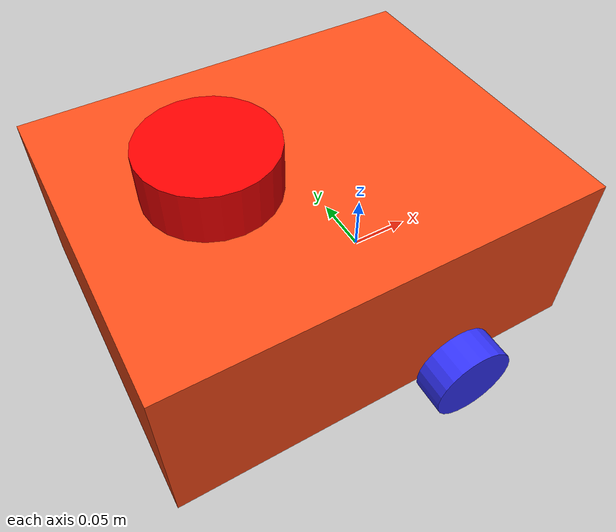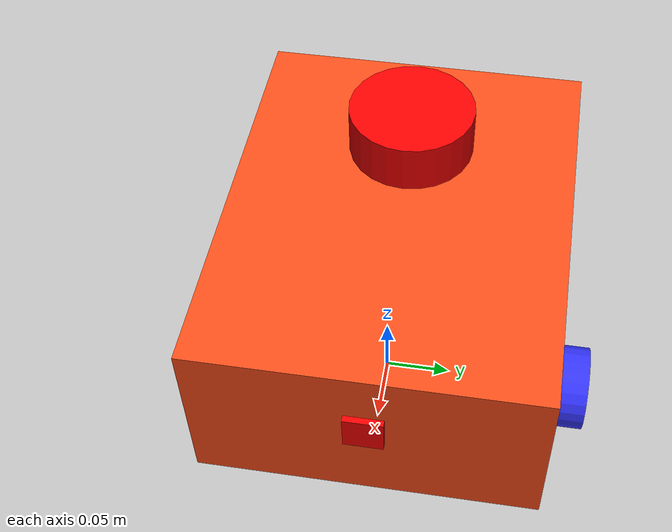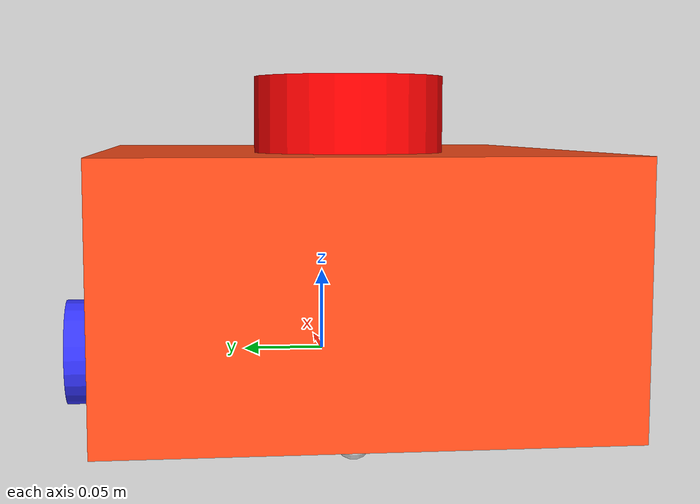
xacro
<?xml version="1.0"?>
<robot xmlns:xacro="http://www.ros.org/wiki/xacro" name="robot">

    <xacro:arg name="use_ros2_control" default="true"/>

    <xacro:include filename="robot_core.xacro" />

    <xacro:if value="$(arg use_ros2_control)">
        <xacro:include filename="ros2_control.xacro" />
    </xacro:if>
    <xacro:unless value="$(arg use_ros2_control)">
        <xacro:include filename="gazebo_control.xacro" />
    </xacro:unless>
    <xacro:include filename="lidar.xacro" />
    <xacro:include filename="camera.xacro" />

</robot>

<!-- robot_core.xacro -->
<robot xmlns:xacro="http://www.ros.org/wiki/xacro">

    <xacro:include filename="inertial_macros.xacro"/>

    <xacro:property name="chassis_length" value="0.335"/>
    <xacro:property name="chassis_width" value="0.265"/>
    <xacro:property name="chassis_height" value="0.138"/>
    <xacro:property name="chassis_mass" value="1.0"/>
    <xacro:property name="wheel_radius" value="0.033"/>
    <xacro:property name="wheel_thickness" value="0.026"/>
    <xacro:property name="wheel_mass" value="0.05"/>
    <xacro:property name="wheel_offset_x" value="0.226"/>
    <xacro:property name="wheel_offset_y" value="0.1485"/>
    <xacro:property name="wheel_offset_z" value="0.01"/>
    <xacro:property name="caster_wheel_radius" value="0.01"/>
    <xacro:property name="caster_wheel_mass" value="0.01"/>
    <xacro:property name="caster_wheel_offset_x" value="0.075"/>
    <xacro:property name="caster_wheel_offset_z" value="${wheel_offset_z - wheel_radius + caster_wheel_radius}"/>

    <material name="white">
        <color rgba="1 1 1 1" />
    </material>

    <material name="orange">
        <color rgba="1 0.3 0.1 1"/>
    </material>

    <material name="blue">
        <color rgba="0.2 0.2 1 1"/>
    </material>

    <material name="black">
        <color rgba="0 0 0 1"/>
    </material>

    <material name="red">
        <color rgba="1 0 0 1"/>
    </material>

    <!-- BASE LINK -->

    <link name="base_link">

    </link>

    <!-- BASE_FOOTPRINT LINK -->

    <joint name="base_footprint_joint" type="fixed">
        <parent link="base_link"/>
        <child link="base_footprint"/>
        <origin xyz="0 0 0" rpy="0 0 0"/>
    </joint>

    <link name="base_footprint">
    </link>

    <!-- CHASSIS LINK -->

    <joint name="chassis_joint" type="fixed">
        <parent link="base_link"/>
        <child link="chassis"/>
        <origin xyz="${-wheel_offset_x} 0 ${-wheel_offset_z}"/>
    </joint>

    <link name="chassis">
        <visual>
            <origin xyz="${chassis_length/2} 0 ${chassis_height/2}"/>
            <geometry>
                <box size="${chassis_length} ${chassis_width} ${chassis_height}"/>
            </geometry>
            <material name="orange"/>
        </visual>
        <collision>
            <origin xyz="${chassis_length/2} 0 ${chassis_height/2}"/>
            <geometry>
                <box size="${chassis_length} ${chassis_width} ${chassis_height}"/>
            </geometry>
        </collision>
        <xacro:inertial_box mass="0.5" x="${chassis_length}" y="${chassis_width}" z="${chassis_height}">
            <origin xyz="${chassis_length/2} 0 ${chassis_height/2}" rpy="0 0 0"/>
        </xacro:inertial_box>
    </link>

    <gazebo reference="chassis">
        <material>Gazebo/White</material>
    </gazebo>

    <!-- LEFT WHEEL LINK -->

    <joint name="left_wheel_joint" type="continuous">
        <parent link="base_link"/>
        <child link="left_wheel"/>
        <origin xyz="0 ${wheel_offset_y} 0" rpy="-${pi/2} 0 0" />
        <axis xyz="0 0 1"/>
    </joint>

    <link name="left_wheel">
        <visual>
            <geometry>
                <cylinder radius="${wheel_radius}" length="${wheel_thickness}"/>
            </geometry>
            <material name="blue"/>
        </visual>
        <collision>
            <geometry>
                <sphere radius="${wheel_radius}"/>
            </geometry>
        </collision>
        <xacro:inertial_cylinder mass="${wheel_mass}" length="${wheel_thickness}" radius="${wheel_radius}">
            <origin xyz="0 0 0" rpy="0 0 0"/>
        </xacro:inertial_cylinder>
    </link>

    <gazebo reference="left_wheel">
        <material>Gazebo/Black</material>
    </gazebo>

    <!-- RIGHT WHEEL LINK -->

    <joint name="right_wheel_joint" type="continuous">
        <parent link="base_link"/>
        <child link="right_wheel"/>
        <origin xyz="0 ${-wheel_offset_y} 0" rpy="${pi/2} 0 0" />
        <axis xyz="0 0 -1"/>
    </joint>

    <link name="right_wheel">
        <visual>
            <geometry>
                <cylinder radius="${wheel_radius}" length="${wheel_thickness}"/>
            </geometry>
            <material name="blue"/>
        </visual>
        <collision>
            <geometry>
                <sphere radius="${wheel_radius}"/>
            </geometry>
        </collision>
        <xacro:inertial_cylinder mass="${wheel_mass}" length="${wheel_thickness}" radius="${wheel_radius}">
            <origin xyz="0 0 0" rpy="0 0 0"/>
        </xacro:inertial_cylinder>
    </link>

    <gazebo reference="right_wheel">
        <material>Gazebo/Red</material>
    </gazebo>

    <!-- CASTER WHEEL LINK -->

    <joint name="caster_wheel_joint" type="fixed">
        <parent link="chassis"/>
        <child link="caster_wheel"/>
        <origin xyz="${caster_wheel_offset_x} 0 ${caster_wheel_offset_z}"/>
    </joint>

    <link name="caster_wheel">
        <visual>
            <geometry>
                <sphere radius="${caster_wheel_radius}"/>
            </geometry>
            <material name="white"/>
        </visual>
        <collision>
            <geometry>
                <sphere radius="${caster_wheel_radius}"/>
            </geometry>
        </collision>
        <xacro:inertial_sphere mass="${caster_wheel_mass}" radius="${caster_wheel_radius}">
            <origin xyz="0 0 0" rpy="0 0 0"/>
        </xacro:inertial_sphere>
    </link>

    <gazebo reference="caster_wheel">
        <material>Gazebo/Black</material>
        <mu1 value="0.01" />
        <mu2 value="0.01" />

    </gazebo>

</robot>

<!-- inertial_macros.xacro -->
<robot xmlns:xacro="http://www.ros.org/wiki/xacro">

    <!-- This file is not a robot in and of itself, it just contains some useful tags that could be included in any robot -->

    <!-- Specify some colours -->

    <!-- Specify some standard inertial calculations https://en.wikipedia.org/wiki/List_of_moments_of_inertia -->
    <!-- These make use of xacro's mathematical functionality -->

    <xacro:macro name="inertial_sphere" params="mass radius *origin">
        <inertial>
            <xacro:insert_block name="origin"/>
            <mass value="${mass}" />
            <inertia ixx="${(2/5) * mass * (radius*radius)}" ixy="0.0" ixz="0.0"
                    iyy="${(2/5) * mass * (radius*radius)}" iyz="0.0"
                    izz="${(2/5) * mass * (radius*radius)}" />
        </inertial>
    </xacro:macro>

    <xacro:macro name="inertial_box" params="mass x y z *origin">
        <inertial>
            <xacro:insert_block name="origin"/>
            <mass value="${mass}" />
            <inertia ixx="${(1/12) * mass * (y*y+z*z)}" ixy="0.0" ixz="0.0"
                    iyy="${(1/12) * mass * (x*x+z*z)}" iyz="0.0"
                    izz="${(1/12) * mass * (x*x+y*y)}" />
        </inertial>
    </xacro:macro>

    <xacro:macro name="inertial_cylinder" params="mass length radius *origin">
        <inertial>
            <xacro:insert_block name="origin"/>
            <mass value="${mass}" />
            <inertia ixx="${(1/12) * mass * (3*radius*radius + length*length)}" ixy="0.0" ixz="0.0"
                    iyy="${(1/12) * mass * (3*radius*radius + length*length)}" iyz="0.0"
                    izz="${(1/2) * mass * (radius*radius)}" />
        </inertial>
    </xacro:macro>

</robot>

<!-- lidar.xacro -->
<robot xmlns:xacro="http://www.ros.org/wiki/xacro">

    <joint name="laser_joint" type="fixed">
        <parent link="chassis"/>
        <child link="laser_frame"/>
        <origin xyz="0.1 0 0.158" rpy="0 0 0"/>
    </joint>

    <link name="laser_frame">
        <visual>
            <geometry>
                <cylinder radius="0.05" length="0.04"/>
            </geometry>
            <material name="red"/>
        </visual>
        <collision>
            <geometry>
                <cylinder radius="0.05" length="0.04"/>
            </geometry>
        </collision>
    </link>

    <gazebo reference="laser_frame">
        <material>Gazebo/Black</material>

        <sensor name="laser" type="ray">
            <pose> 0 0 0 0 0 0 </pose>
            <visualize>false</visualize>
            <update_rate>10</update_rate>
            <ray>
                <scan>
                    <horizontal>
                        <samples>360</samples>
                        <resolution>1</resolution>
                        <min_angle>-3.14</min_angle>
                        <max_angle>3.14</max_angle>
                    </horizontal>
                </scan>
                <range>
                    <min>0.3</min>
                    <max>12</max>
                    <resolution>0.01</resolution>
                </range>
            </ray>
            <plugin name="laser_controller" filename="libgazebo_ros_ray_sensor.so">
                <ros>
                    <argument>~/out:=scan</argument>
                </ros>
                <output_type>sensor_msgs/LaserScan</output_type>
                <frame_name>laser_frame</frame_name>
            </plugin>
        </sensor>
    </gazebo>

</robot>

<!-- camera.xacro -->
<robot xmlns:xacro="http://www.ros.org/wiki/xacro">

    <joint name="camera_joint" type="fixed">
        <parent link="chassis"/>
        <child link="camera_link"/>
        <origin xyz="0.335 0 0.08" rpy="0 0 0"/>
    </joint>

    <link name="camera_link">
        <visual>
            <geometry>
                <box size="0.010 0.03 0.03"/>
            </geometry>
            <material name="red"/>
        </visual>
    </link>

    <joint name="camera_optical_joint" type="fixed">
        <parent link="camera_link"/>
        <child link="camera_link_optical"/>
        <origin xyz="0 0 0" rpy="${-pi/2} 0 ${-pi/2}"/>
    </joint>

    <link name="camera_link_optical"></link>

    <gazebo reference="camera_link">
        <material>Gazebo/Black</material>

        <sensor name="camera" type="camera">
            <pose> 0 0 0 0 0 0 </pose>
            <visualize>true</visualize>
            <update_rate>10</update_rate>
            <camera>
                <image>
                    <forma>R8G8B8</forma>
                    <width>648</width>
                    <height>480</height>
                </image>
                <clip>
                    <near>0.05</near>
                    <far>8.0</far>
                </clip>
            </camera>
            <plugin name="camera_controller" filename="libgazebo_ros_camera.so">
                <frame_name>camera_link_optical</frame_name>
            </plugin>
        </sensor>
    </gazebo>

</robot>
